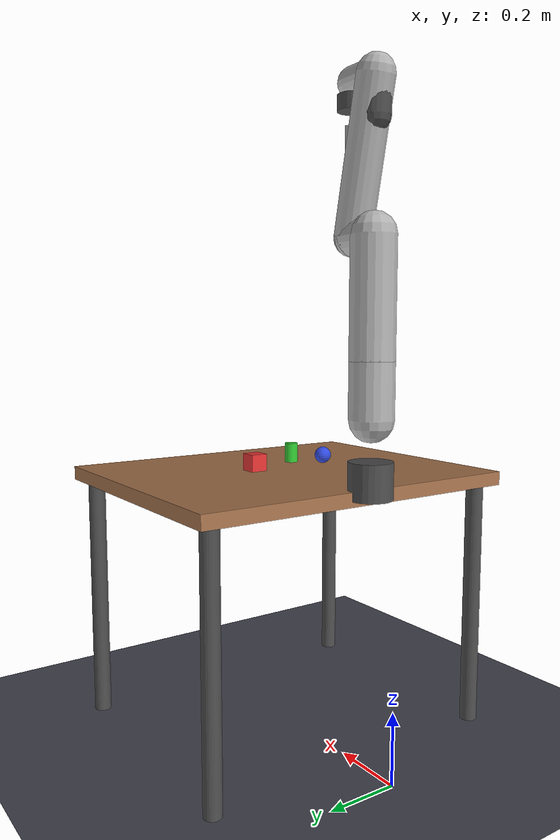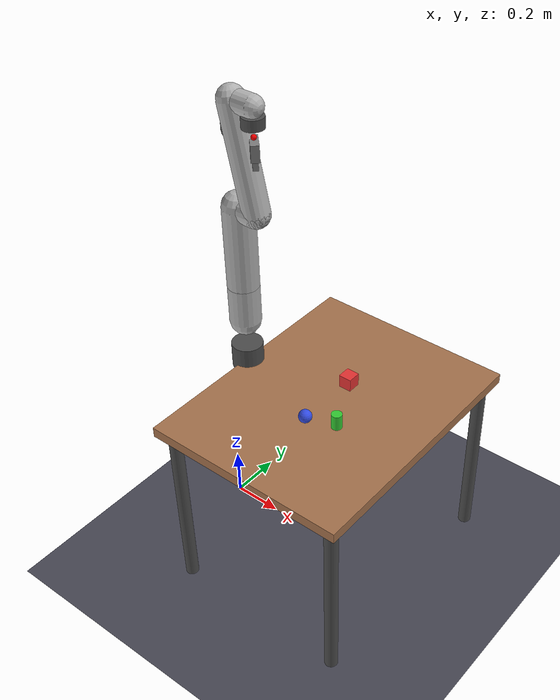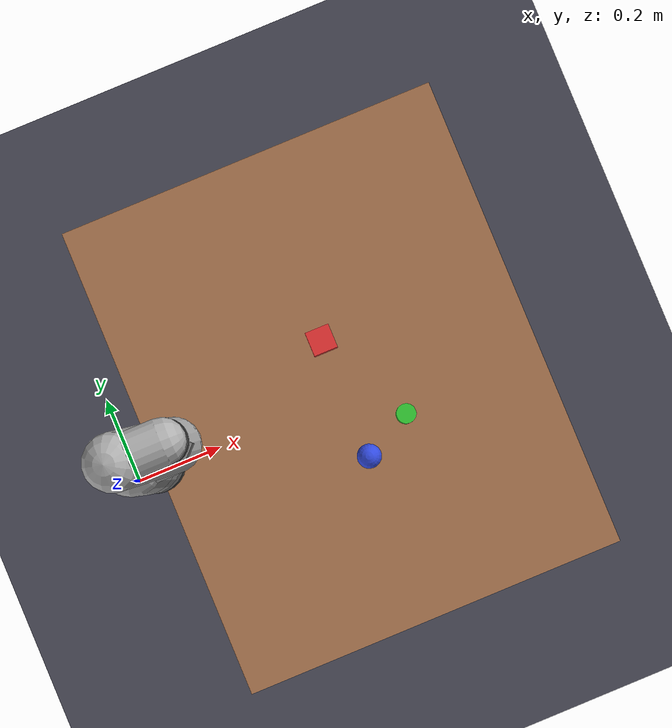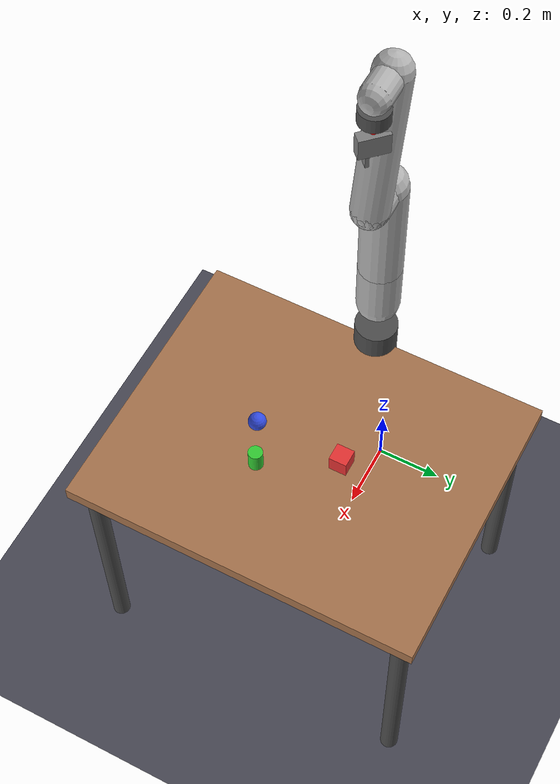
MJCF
<!--
  Desk pickup scene: A Panda arm mounted on a desk with manipulable objects.
  Used as the first SimVerse demo environment.
-->
<mujoco model="desk_pickup">
  <compiler angle="radian" autolimits="true"/>

  <option timestep="0.002" gravity="0 0 -9.81" integrator="implicit">
    <flag multiccd="enable"/>
  </option>

  <default>
    <joint damping="1.0" armature="0.1"/>
    <geom condim="4" friction="1 0.5 0.01" solref="0.02 1"/>
    <position kp="100" kv="20"/>
    <default class="visual">
      <geom group="1" contype="0" conaffinity="0"/>
    </default>
    <default class="collision">
      <geom group="2"/>
    </default>
  </default>

  <asset>
    <texture name="texplane" type="2d" builtin="checker" rgb1="0.25 0.25 0.3" rgb2="0.3 0.3 0.35" width="512" height="512"/>
    <material name="matplane" texture="texplane" texrepeat="4 4" reflectance="0.1"/>
    <material name="table_wood" rgba="0.65 0.45 0.3 1" specular="0.3" shininess="0.3"/>
    <material name="metal" rgba="0.7 0.7 0.7 1" specular="0.8" shininess="0.8"/>
    <material name="dark_metal" rgba="0.3 0.3 0.3 1" specular="0.6" shininess="0.6"/>
    <material name="gripper_mat" rgba="0.5 0.5 0.5 1"/>
    <material name="red_obj" rgba="0.9 0.2 0.2 1" specular="0.5"/>
    <material name="green_obj" rgba="0.2 0.8 0.2 1" specular="0.5"/>
    <material name="blue_obj" rgba="0.2 0.3 0.9 1" specular="0.5"/>
  </asset>

  <worldbody>
    <!-- Ground plane -->
    <geom name="floor" type="plane" size="2 2 0.1" material="matplane"/>
    <light name="top_light" pos="0 0 2.5" dir="0 0 -1" diffuse="0.8 0.8 0.8" specular="0.3 0.3 0.3"/>
    <light name="front_light" pos="1 1 1.5" dir="-0.5 -0.5 -0.5" diffuse="0.5 0.5 0.5"/>

    <!-- Desk -->
    <body name="desk" pos="0.5 0 0">
      <!-- Table top -->
      <geom name="table_top" type="box" size="0.4 0.5 0.02" pos="0 0 0.75" material="table_wood" mass="50"/>
      <!-- Legs -->
      <geom name="leg1" type="cylinder" fromto="-0.35 -0.45 0 -0.35 -0.45 0.73" size="0.025" material="dark_metal"/>
      <geom name="leg2" type="cylinder" fromto="0.35 -0.45 0 0.35 -0.45 0.73" size="0.025" material="dark_metal"/>
      <geom name="leg3" type="cylinder" fromto="-0.35 0.45 0 -0.35 0.45 0.73" size="0.025" material="dark_metal"/>
      <geom name="leg4" type="cylinder" fromto="0.35 0.45 0 0.35 0.45 0.73" size="0.025" material="dark_metal"/>
    </body>

    <!-- Panda arm mounted at one edge of the desk -->
    <body name="panda_link0" pos="0.1 0 0.77">
      <geom type="cylinder" size="0.06 0.05" pos="0 0 0.025" material="dark_metal" class="visual"/>
      <geom type="cylinder" size="0.06 0.05" pos="0 0 0.025" class="collision"/>

      <body name="panda_link1" pos="0 0 0.333">
        <joint name="joint1" type="hinge" axis="0 0 1" range="-2.8973 2.8973" damping="5.0"/>
        <geom type="capsule" fromto="0 0 0 0 0 -0.15" size="0.06" material="metal" class="visual"/>
        <geom type="capsule" fromto="0 0 0 0 0 -0.15" size="0.06" class="collision"/>

        <body name="panda_link2" pos="0 0 0" quat="0.707107 -0.707107 0 0">
          <joint name="joint2" type="hinge" axis="0 0 1" range="-1.7628 1.7628" damping="5.0"/>
          <geom type="capsule" fromto="0 0 0 0 -0.316 0" size="0.06" material="metal" class="visual"/>
          <geom type="capsule" fromto="0 0 0 0 -0.316 0" size="0.06" class="collision"/>

          <body name="panda_link3" pos="0 -0.316 0" quat="0.707107 0.707107 0 0">
            <joint name="joint3" type="hinge" axis="0 0 1" range="-2.8973 2.8973" damping="5.0"/>
            <geom type="capsule" fromto="0 0 0 0.0825 0 0" size="0.05" material="metal" class="visual"/>
            <geom type="capsule" fromto="0 0 0 0.0825 0 0" size="0.05" class="collision"/>

            <body name="panda_link4" pos="0.0825 0 0" quat="0.707107 0.707107 0 0">
              <joint name="joint4" type="hinge" axis="0 0 1" range="-3.0718 -0.0698" damping="5.0"/>
              <geom type="capsule" fromto="0 0 0 -0.0825 0.384 0" size="0.05" material="metal" class="visual"/>
              <geom type="capsule" fromto="0 0 0 -0.0825 0.384 0" size="0.05" class="collision"/>

              <body name="panda_link5" pos="-0.0825 0.384 0" quat="0.707107 -0.707107 0 0">
                <joint name="joint5" type="hinge" axis="0 0 1" range="-2.8973 2.8973" damping="3.0"/>
                <geom type="capsule" fromto="0 0 0 0 0 -0.1" size="0.04" material="dark_metal" class="visual"/>
                <geom type="capsule" fromto="0 0 0 0 0 -0.1" size="0.04" class="collision"/>

                <body name="panda_link6" pos="0 0 0" quat="0.707107 0.707107 0 0">
                  <joint name="joint6" type="hinge" axis="0 0 1" range="-0.0175 3.7525" damping="3.0"/>
                  <geom type="capsule" fromto="0 0 0 0.088 0 0" size="0.04" material="metal" class="visual"/>
                  <geom type="capsule" fromto="0 0 0 0.088 0 0" size="0.04" class="collision"/>

                  <body name="panda_link7" pos="0.088 0 0" quat="0.707107 0.707107 0 0">
                    <joint name="joint7" type="hinge" axis="0 0 1" range="-2.8973 2.8973" damping="1.0"/>
                    <geom type="cylinder" size="0.04 0.02" pos="0 0 0.05" material="dark_metal" class="visual"/>
                    <geom type="cylinder" size="0.04 0.02" pos="0 0 0.05" class="collision"/>

                    <site name="end_effector" pos="0 0 0.1034" size="0.01" rgba="1 0 0 1"/>

                    <body name="panda_hand" pos="0 0 0.1034" quat="0.924 0 0 -0.383">
                      <geom type="box" size="0.015 0.04 0.03" pos="0 0 0.04" material="gripper_mat" class="visual"/>
                      <geom type="box" size="0.015 0.04 0.03" pos="0 0 0.04" class="collision"/>

                      <body name="panda_leftfinger" pos="0 0 0.0584">
                        <joint name="finger_joint1" type="slide" axis="0 1 0" range="0 0.04" damping="10"/>
                        <geom type="box" size="0.01 0.005 0.03" pos="0 0.015 0.02" material="gripper_mat" class="visual"/>
                        <geom type="box" size="0.01 0.005 0.03" pos="0 0.015 0.02" class="collision"/>
                      </body>

                      <body name="panda_rightfinger" pos="0 0 0.0584">
                        <joint name="finger_joint2" type="slide" axis="0 -1 0" range="0 0.04" damping="10"/>
                        <geom type="box" size="0.01 0.005 0.03" pos="0 -0.015 0.02" material="gripper_mat" class="visual"/>
                        <geom type="box" size="0.01 0.005 0.03" pos="0 -0.015 0.02" class="collision"/>
                      </body>
                    </body>
                  </body>
                </body>
              </body>
            </body>
          </body>
        </body>
      </body>
    </body>

    <!-- Manipulable objects on the desk -->
    <body name="red_cube" pos="0.5 0.1 0.8">
      <freejoint name="red_cube_joint"/>
      <geom name="red_cube_geom" type="box" size="0.025 0.025 0.025" material="red_obj" mass="0.1"/>
    </body>

    <body name="green_cylinder" pos="0.6 -0.1 0.8">
      <freejoint name="green_cylinder_joint"/>
      <geom name="green_cylinder_geom" type="cylinder" size="0.02 0.03" material="green_obj" mass="0.08"/>
    </body>

    <body name="blue_sphere" pos="0.5 -0.15 0.8">
      <freejoint name="blue_sphere_joint"/>
      <geom name="blue_sphere_geom" type="sphere" size="0.025" material="blue_obj" mass="0.05"/>
    </body>

    <!-- Camera for overhead view -->
    <camera name="overhead" pos="0.5 0 1.8" quat="0.707 0.707 0 0" fovy="60"/>
    <camera name="side" pos="1.5 0 1.2" quat="0.5 0.5 -0.5 -0.5" fovy="60"/>
    <camera name="front" pos="0.5 -1.2 1.0" xyaxes="1 0 0 0 0.5 0.866" fovy="60"/>
  </worldbody>

  <actuator>
    <position name="actuator1" joint="joint1" kp="4500"/>
    <position name="actuator2" joint="joint2" kp="4500"/>
    <position name="actuator3" joint="joint3" kp="3500"/>
    <position name="actuator4" joint="joint4" kp="3500"/>
    <position name="actuator5" joint="joint5" kp="2000"/>
    <position name="actuator6" joint="joint6" kp="2000"/>
    <position name="actuator7" joint="joint7" kp="2000"/>
    <position name="actuator_finger1" joint="finger_joint1" kp="1000"/>
    <position name="actuator_finger2" joint="finger_joint2" kp="1000"/>
  </actuator>

  <sensor>
    <jointpos name="joint1_pos" joint="joint1"/>
    <jointpos name="joint2_pos" joint="joint2"/>
    <jointpos name="joint3_pos" joint="joint3"/>
    <jointpos name="joint4_pos" joint="joint4"/>
    <jointpos name="joint5_pos" joint="joint5"/>
    <jointpos name="joint6_pos" joint="joint6"/>
    <jointpos name="joint7_pos" joint="joint7"/>
  </sensor>
</mujoco>
